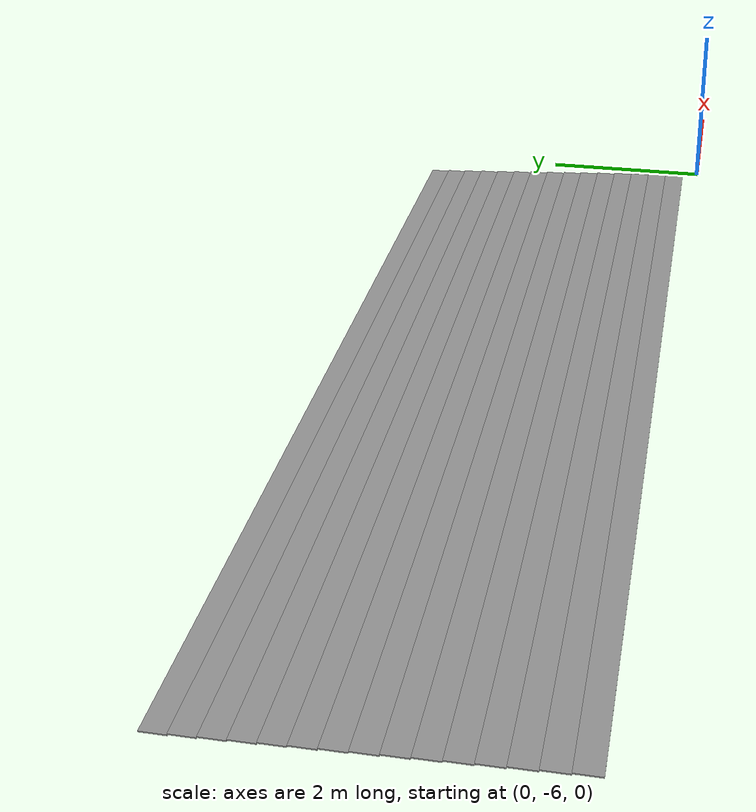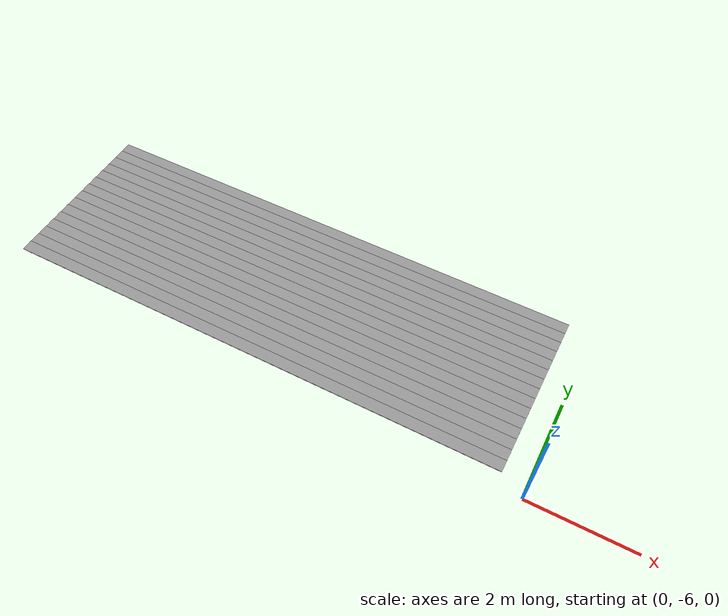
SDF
<?xml version='1.0'?>
<sdf version='1.7'>
  <model name='xiepo'>
    <pose>-5.235 -2.905 0 0 -0 0</pose>
    <link name='Stairs_0'>
      <visual name='Stairs_0_Visual_0'>
        <pose>-0.235 0.478333 0.006667 0 -0 0</pose>
        <geometry>
          <box>
            <size>10 0.233333 0.013333</size>
          </box>
        </geometry>
        <material>
          <script>
            <uri>file://media/materials/scripts/gazebo.material</uri>
            <name>Gazebo/Grey</name>
          </script>
          <ambient>1 1 1 1</ambient>
        </material>
        <meta>
          <layer>0</layer>
        </meta>
      </visual>
      <collision name='Stairs_0_Collision_0'>
        <geometry>
          <box>
            <size>10 0.233333 0.013333</size>
          </box>
        </geometry>
        <pose>-0.235 0.478333 0.006667 0 -0 0</pose>
      </collision>
      <visual name='Stairs_0_Visual_1'>
        <pose>-0.235 0.245 0.02 0 -0 0</pose>
        <geometry>
          <box>
            <size>10 0.233333 0.013333</size>
          </box>
        </geometry>
        <material>
          <script>
            <uri>file://media/materials/scripts/gazebo.material</uri>
            <name>Gazebo/Grey</name>
          </script>
          <ambient>1 1 1 1</ambient>
        </material>
        <meta>
          <layer>0</layer>
        </meta>
      </visual>
      <collision name='Stairs_0_Collision_1'>
        <geometry>
          <box>
            <size>10 0.233333 0.013333</size>
          </box>
        </geometry>
        <pose>-0.235 0.245 0.02 0 -0 0</pose>
      </collision>
      <visual name='Stairs_0_Visual_2'>
        <pose>-0.235 0.011667 0.033333 0 -0 0</pose>
        <geometry>
          <box>
            <size>10 0.233333 0.013333</size>
          </box>
        </geometry>
        <material>
          <script>
            <uri>file://media/materials/scripts/gazebo.material</uri>
            <name>Gazebo/Grey</name>
          </script>
          <ambient>1 1 1 1</ambient>
        </material>
        <meta>
          <layer>0</layer>
        </meta>
      </visual>
      <collision name='Stairs_0_Collision_2'>
        <geometry>
          <box>
            <size>10 0.233333 0.013333</size>
          </box>
        </geometry>
        <pose>-0.235 0.011667 0.033333 0 -0 0</pose>
      </collision>
      <visual name='Stairs_0_Visual_3'>
        <pose>-0.235 -0.221667 0.046667 0 -0 0</pose>
        <geometry>
          <box>
            <size>10 0.233333 0.013333</size>
          </box>
        </geometry>
        <material>
          <script>
            <uri>file://media/materials/scripts/gazebo.material</uri>
            <name>Gazebo/Grey</name>
          </script>
          <ambient>1 1 1 1</ambient>
        </material>
        <meta>
          <layer>0</layer>
        </meta>
      </visual>
      <collision name='Stairs_0_Collision_3'>
        <geometry>
          <box>
            <size>10 0.233333 0.013333</size>
          </box>
        </geometry>
        <pose>-0.235 -0.221667 0.046667 0 -0 0</pose>
      </collision>
      <visual name='Stairs_0_Visual_4'>
        <pose>-0.235 -0.455 0.06 0 -0 0</pose>
        <geometry>
          <box>
            <size>10 0.233333 0.013333</size>
          </box>
        </geometry>
        <material>
          <script>
            <uri>file://media/materials/scripts/gazebo.material</uri>
            <name>Gazebo/Grey</name>
          </script>
          <ambient>1 1 1 1</ambient>
        </material>
        <meta>
          <layer>0</layer>
        </meta>
      </visual>
      <collision name='Stairs_0_Collision_4'>
        <geometry>
          <box>
            <size>10 0.233333 0.013333</size>
          </box>
        </geometry>
        <pose>-0.235 -0.455 0.06 0 -0 0</pose>
      </collision>
      <visual name='Stairs_0_Visual_5'>
        <pose>-0.235 -0.688333 0.073333 0 -0 0</pose>
        <geometry>
          <box>
            <size>10 0.233333 0.013333</size>
          </box>
        </geometry>
        <material>
          <script>
            <uri>file://media/materials/scripts/gazebo.material</uri>
            <name>Gazebo/Grey</name>
          </script>
          <ambient>1 1 1 1</ambient>
        </material>
        <meta>
          <layer>0</layer>
        </meta>
      </visual>
      <collision name='Stairs_0_Collision_5'>
        <geometry>
          <box>
            <size>10 0.233333 0.013333</size>
          </box>
        </geometry>
        <pose>-0.235 -0.688333 0.073333 0 -0 0</pose>
      </collision>
      <visual name='Stairs_0_Visual_6'>
        <pose>-0.235 -0.921667 0.086667 0 -0 0</pose>
        <geometry>
          <box>
            <size>10 0.233333 0.013333</size>
          </box>
        </geometry>
        <material>
          <script>
            <uri>file://media/materials/scripts/gazebo.material</uri>
            <name>Gazebo/Grey</name>
          </script>
          <ambient>1 1 1 1</ambient>
        </material>
        <meta>
          <layer>0</layer>
        </meta>
      </visual>
      <collision name='Stairs_0_Collision_6'>
        <geometry>
          <box>
            <size>10 0.233333 0.013333</size>
          </box>
        </geometry>
        <pose>-0.235 -0.921667 0.086667 0 -0 0</pose>
      </collision>
      <visual name='Stairs_0_Visual_7'>
        <pose>-0.235 -1.155 0.1 0 -0 0</pose>
        <geometry>
          <box>
            <size>10 0.233333 0.013333</size>
          </box>
        </geometry>
        <material>
          <script>
            <uri>file://media/materials/scripts/gazebo.material</uri>
            <name>Gazebo/Grey</name>
          </script>
          <ambient>1 1 1 1</ambient>
        </material>
        <meta>
          <layer>0</layer>
        </meta>
      </visual>
      <collision name='Stairs_0_Collision_7'>
        <geometry>
          <box>
            <size>10 0.233333 0.013333</size>
          </box>
        </geometry>
        <pose>-0.235 -1.155 0.1 0 -0 0</pose>
      </collision>
      <visual name='Stairs_0_Visual_8'>
        <pose>-0.235 -1.38833 0.113333 0 -0 0</pose>
        <geometry>
          <box>
            <size>10 0.233333 0.013333</size>
          </box>
        </geometry>
        <material>
          <script>
            <uri>file://media/materials/scripts/gazebo.material</uri>
            <name>Gazebo/Grey</name>
          </script>
          <ambient>1 1 1 1</ambient>
        </material>
        <meta>
          <layer>0</layer>
        </meta>
      </visual>
      <collision name='Stairs_0_Collision_8'>
        <geometry>
          <box>
            <size>10 0.233333 0.013333</size>
          </box>
        </geometry>
        <pose>-0.235 -1.38833 0.113333 0 -0 0</pose>
      </collision>
      <visual name='Stairs_0_Visual_9'>
        <pose>-0.235 -1.62167 0.126667 0 -0 0</pose>
        <geometry>
          <box>
            <size>10 0.233333 0.013333</size>
          </box>
        </geometry>
        <material>
          <script>
            <uri>file://media/materials/scripts/gazebo.material</uri>
            <name>Gazebo/Grey</name>
          </script>
          <ambient>1 1 1 1</ambient>
        </material>
        <meta>
          <layer>0</layer>
        </meta>
      </visual>
      <collision name='Stairs_0_Collision_9'>
        <geometry>
          <box>
            <size>10 0.233333 0.013333</size>
          </box>
        </geometry>
        <pose>-0.235 -1.62167 0.126667 0 -0 0</pose>
      </collision>
      <visual name='Stairs_0_Visual_10'>
        <pose>-0.235 -1.855 0.14 0 -0 0</pose>
        <geometry>
          <box>
            <size>10 0.233333 0.013333</size>
          </box>
        </geometry>
        <material>
          <script>
            <uri>file://media/materials/scripts/gazebo.material</uri>
            <name>Gazebo/Grey</name>
          </script>
          <ambient>1 1 1 1</ambient>
        </material>
        <meta>
          <layer>0</layer>
        </meta>
      </visual>
      <collision name='Stairs_0_Collision_10'>
        <geometry>
          <box>
            <size>10 0.233333 0.013333</size>
          </box>
        </geometry>
        <pose>-0.235 -1.855 0.14 0 -0 0</pose>
      </collision>
      <visual name='Stairs_0_Visual_11'>
        <pose>-0.235 -2.08833 0.153333 0 -0 0</pose>
        <geometry>
          <box>
            <size>10 0.233333 0.013333</size>
          </box>
        </geometry>
        <material>
          <script>
            <uri>file://media/materials/scripts/gazebo.material</uri>
            <name>Gazebo/Grey</name>
          </script>
          <ambient>1 1 1 1</ambient>
        </material>
        <meta>
          <layer>0</layer>
        </meta>
      </visual>
      <collision name='Stairs_0_Collision_11'>
        <geometry>
          <box>
            <size>10 0.233333 0.013333</size>
          </box>
        </geometry>
        <pose>-0.235 -2.08833 0.153333 0 -0 0</pose>
      </collision>
      <visual name='Stairs_0_Visual_12'>
        <pose>-0.235 -2.32167 0.166667 0 -0 0</pose>
        <geometry>
          <box>
            <size>10 0.233333 0.013333</size>
          </box>
        </geometry>
        <material>
          <script>
            <uri>file://media/materials/scripts/gazebo.material</uri>
            <name>Gazebo/Grey</name>
          </script>
          <ambient>1 1 1 1</ambient>
        </material>
        <meta>
          <layer>0</layer>
        </meta>
      </visual>
      <collision name='Stairs_0_Collision_12'>
        <geometry>
          <box>
            <size>10 0.233333 0.013333</size>
          </box>
        </geometry>
        <pose>-0.235 -2.32167 0.166667 0 -0 0</pose>
      </collision>
      <visual name='Stairs_0_Visual_13'>
        <pose>-0.235 -2.555 0.18 0 -0 0</pose>
        <geometry>
          <box>
            <size>10 0.233333 0.013333</size>
          </box>
        </geometry>
        <material>
          <script>
            <uri>file://media/materials/scripts/gazebo.material</uri>
            <name>Gazebo/Grey</name>
          </script>
          <ambient>1 1 1 1</ambient>
        </material>
        <meta>
          <layer>0</layer>
        </meta>
      </visual>
      <collision name='Stairs_0_Collision_13'>
        <geometry>
          <box>
            <size>10 0.233333 0.013333</size>
          </box>
        </geometry>
        <pose>-0.235 -2.555 0.18 0 -0 0</pose>
      </collision>
      <visual name='Stairs_0_Visual_14'>
        <pose>-0.235 -2.78833 0.193333 0 -0 0</pose>
        <geometry>
          <box>
            <size>10 0.233333 0.013333</size>
          </box>
        </geometry>
        <material>
          <script>
            <uri>file://media/materials/scripts/gazebo.material</uri>
            <name>Gazebo/Grey</name>
          </script>
          <ambient>1 1 1 1</ambient>
        </material>
        <meta>
          <layer>0</layer>
        </meta>
      </visual>
      <collision name='Stairs_0_Collision_14'>
        <geometry>
          <box>
            <size>10 0.233333 0.013333</size>
          </box>
        </geometry>
        <pose>-0.235 -2.78833 0.193333 0 -0 0</pose>
      </collision>
    </link>
    <static>1</static>
  </model>
</sdf>
